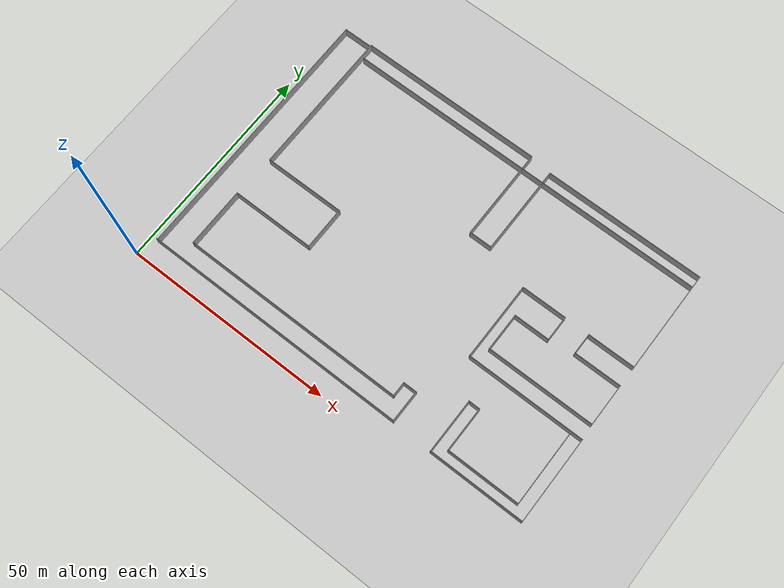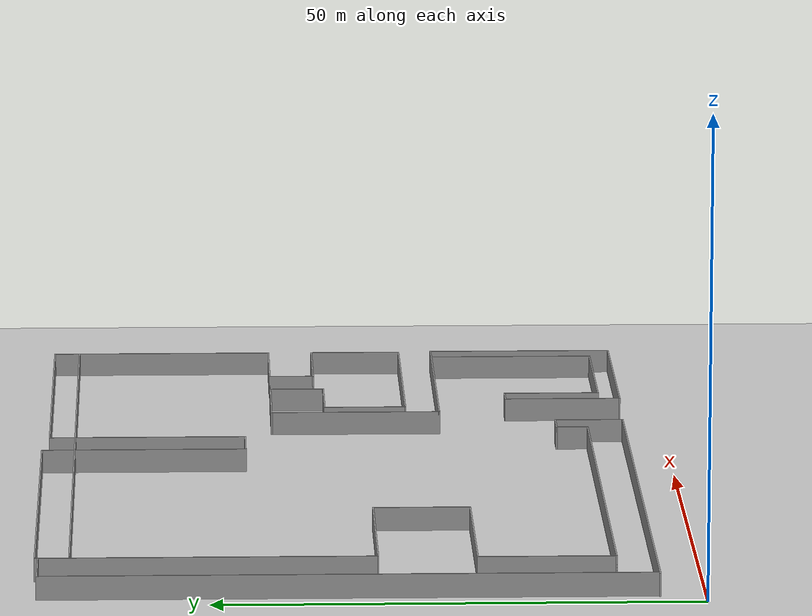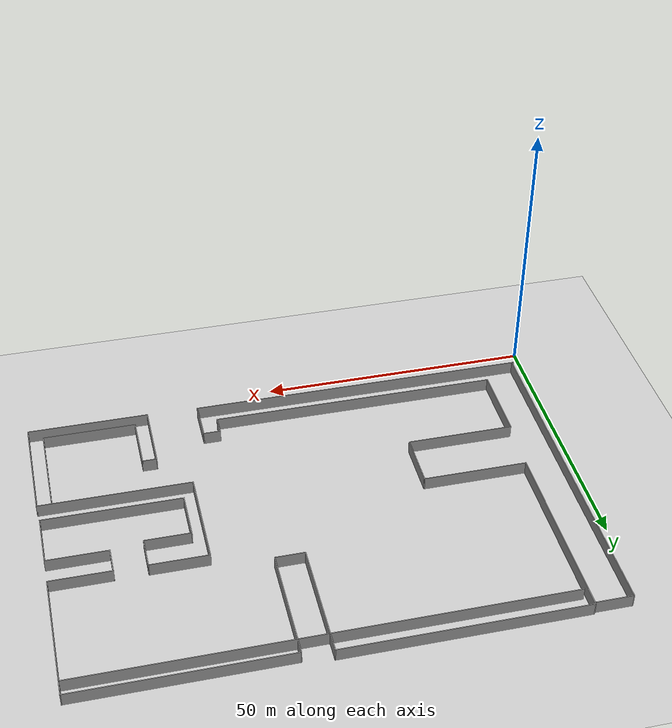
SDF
<sdf version="1.6">
 <world name="default">
  <light name="sun" type="directional">
   <pose>0 0 10 0 -0 0</pose>
   <diffuse>0.8 0.8 0.8 1</diffuse>
   <specular>0.2 0.2 0.2 1</specular>
   <attenuation>
    <range>1000</range>
    <constant>0.9</constant>
    <linear>0.01</linear>
    <quadratic>0.001</quadratic>
   </attenuation>
   <direction>-0.5 0.1 -0.9</direction>
  </light>
  <model name="ground_plane">
   <static>1</static>
   <link name="link">
    <collision name="collision">
     <geometry><plane><normal>0 0 1</normal><size>100 100</size></plane></geometry>
     <surface><friction><ode><mu>100</mu><mu2>50</mu2></ode></friction></surface>
    </collision>
    <visual name="visual">
     <cast_shadows>0</cast_shadows>
     <geometry><plane><normal>0 0 1</normal><size>100 100</size></plane></geometry>
     <material>
      <script><uri>file://media/materials/scripts/gazebo.material</uri><name>Gazebo/Grey</name></script>
     </material>
    </visual>
   </link>
  </model>
  <gravity>0 0 -9.8</gravity>
  <magnetic_field>6e-06 2.3e-05 -4.2e-05</magnetic_field>
  <atmosphere type="adiabatic"/>
  <physics name="default_physics" default="0" type="ode">
   <max_step_size>0.001</max_step_size>
   <real_time_factor>1</real_time_factor>
   <real_time_update_rate>1000</real_time_update_rate>
  </physics>
  <scene><ambient>0.4 0.4 0.4 1</ambient><background>0.7 0.7 0.7 1</background><shadows>1</shadows></scene>
  <spherical_coordinates>
   <surface_model>EARTH_WGS84</surface_model>
   <latitude_deg>0</latitude_deg>
   <longitude_deg>0</longitude_deg>
   <elevation>0</elevation>
   <heading_deg>0</heading_deg>
  </spherical_coordinates>
  <model name="multivehicle_course">
   <pose>49.3864 36.057 0 0 -0 0</pose>
   <link name="Wall_56">
    <collision name="Wall_56_Collision">
     <geometry><box><size>63 0.15 2.5</size></box></geometry>
     <pose>0 0 1.25 0 -0 0</pose>
    </collision>
    <visual name="Wall_56_Visual">
     <pose>0 0 1.25 0 -0 0</pose>
     <geometry><box><size>63 0.15 2.5</size></box></geometry>
     <material>
      <script><uri>file://media/materials/scripts/gazebo.material</uri><name>Gazebo/Grey</name></script>
      <ambient>1 1 1 1</ambient>
     </material>
     <meta><layer>0</layer></meta>
    </visual>
    <pose>-15.925 -31.4 0 0 -0 0</pose>
   </link>
   <link name="Wall_57">
    <collision name="Wall_57_Collision">
     <geometry><box><size>7.5 0.15 2.5</size></box></geometry>
     <pose>0 0 1.25 0 -0 0</pose>
    </collision>
    <visual name="Wall_57_Visual">
     <pose>0 0 1.25 0 -0 0</pose>
     <geometry><box><size>7.5 0.15 2.5</size></box></geometry>
     <material>
      <script><uri>file://media/materials/scripts/gazebo.material</uri><name>Gazebo/Grey</name></script>
      <ambient>1 1 1 1</ambient>
     </material>
     <meta><layer>0</layer></meta>
    </visual>
    <pose>15.5 -27.725 0 0 -0 1.5708</pose>
   </link>
   <link name="Wall_58">
    <collision name="Wall_58_Collision">
     <geometry><box><size>3.25 0.15 2.5</size></box></geometry>
     <pose>0 0 1.25 0 -0 0</pose>
    </collision>
    <visual name="Wall_58_Visual">
     <pose>0 0 1.25 0 -0 0</pose>
     <geometry><box><size>3.25 0.15 2.5</size></box></geometry>
     <material>
      <script><uri>file://media/materials/scripts/gazebo.material</uri><name>Gazebo/Grey</name></script>
      <ambient>1 1 1 1</ambient>
     </material>
     <meta><layer>0</layer></meta>
    </visual>
    <pose>13.95 -24.05 0 0 -0 3.14159</pose>
   </link>
   <link name="Wall_59">
    <collision name="Wall_59_Collision">
     <geometry><box><size>3.5 0.15 2.5</size></box></geometry>
     <pose>0 0 1.25 0 -0 0</pose>
    </collision>
    <visual name="Wall_59_Visual">
     <pose>0 0 1.25 0 -0 0</pose>
     <geometry><box><size>3.5 0.15 2.5</size></box></geometry>
     <material>
      <script><uri>file://media/materials/scripts/gazebo.material</uri><name>Gazebo/Grey</name></script>
      <ambient>1 1 1 1</ambient>
     </material>
     <meta><layer>0</layer></meta>
    </visual>
    <pose>12.4 -25.725 0 0 -0 -1.5708</pose>
   </link>
   <link name="Wall_60">
    <collision name="Wall_60_Collision">
     <geometry><box><size>53.25 0.15 2.5</size></box></geometry>
     <pose>0 0 1.25 0 -0 0</pose>
    </collision>
    <visual name="Wall_60_Visual">
     <pose>0 0 1.25 0 -0 0</pose>
     <geometry><box><size>53.25 0.15 2.5</size></box></geometry>
     <material>
      <script><uri>file://media/materials/scripts/gazebo.material</uri><name>Gazebo/Grey</name></script>
      <ambient>1 1 1 1</ambient>
     </material>
     <meta><layer>0</layer></meta>
    </visual>
    <pose>-14.15 -27.4 0 0 -0 3.14159</pose>
   </link>
   <link name="Wall_61">
    <collision name="Wall_61_Collision">
     <geometry><box><size>14.25 0.15 2.5</size></box></geometry>
     <pose>0 0 1.25 0 -0 0</pose>
    </collision>
    <visual name="Wall_61_Visual">
     <pose>0 0 1.25 0 -0 0</pose>
     <geometry><box><size>14.25 0.15 2.5</size></box></geometry>
     <material>
      <script><uri>file://media/materials/scripts/gazebo.material</uri><name>Gazebo/Grey</name></script>
      <ambient>1 1 1 1</ambient>
     </material>
     <meta><layer>0</layer></meta>
    </visual>
    <pose>-40.7 -20.35 0 0 -0 1.5708</pose>
   </link>
   <link name="Wall_62">
    <collision name="Wall_62_Collision">
     <geometry><box><size>19.75 0.15 2.5</size></box></geometry>
     <pose>0 0 1.25 0 -0 0</pose>
    </collision>
    <visual name="Wall_62_Visual">
     <pose>0 0 1.25 0 -0 0</pose>
     <geometry><box><size>19.75 0.15 2.5</size></box></geometry>
     <material>
      <script><uri>file://media/materials/scripts/gazebo.material</uri><name>Gazebo/Grey</name></script>
      <ambient>1 1 1 1</ambient>
     </material>
     <meta><layer>0</layer></meta>
    </visual>
    <pose>-30.9 -13.3 0 0 -0 0</pose>
   </link>
   <link name="Wall_63">
    <collision name="Wall_63_Collision">
     <geometry><box><size>10.25 0.15 2.5</size></box></geometry>
     <pose>0 0 1.25 0 -0 0</pose>
    </collision>
    <visual name="Wall_63_Visual">
     <pose>0 0 1.25 0 -0 0</pose>
     <geometry><box><size>10.25 0.15 2.5</size></box></geometry>
     <material>
      <script><uri>file://media/materials/scripts/gazebo.material</uri><name>Gazebo/Grey</name></script>
      <ambient>1 1 1 1</ambient>
     </material>
     <meta><layer>0</layer></meta>
    </visual>
    <pose>-21.1 -8.25 0 0 -0 1.5708</pose>
   </link>
   <link name="Wall_64">
    <collision name="Wall_64_Collision">
     <geometry><box><size>19.25 0.15 2.5</size></box></geometry>
     <pose>0 0 1.25 0 -0 0</pose>
    </collision>
    <visual name="Wall_64_Visual">
     <pose>0 0 1.25 0 -0 0</pose>
     <geometry><box><size>19.25 0.15 2.5</size></box></geometry>
     <material>
      <script><uri>file://media/materials/scripts/gazebo.material</uri><name>Gazebo/Grey</name></script>
      <ambient>1 1 1 1</ambient>
     </material>
     <meta><layer>0</layer></meta>
    </visual>
    <pose>-30.65 -3.2 0 0 -0 3.14159</pose>
   </link>
   <link name="Wall_65">
    <collision name="Wall_65_Collision">
     <geometry><box><size>35 0.15 2.5</size></box></geometry>
     <pose>0 0 1.25 0 -0 0</pose>
    </collision>
    <visual name="Wall_65_Visual">
     <pose>0 0 1.25 0 -0 0</pose>
     <geometry><box><size>35 0.15 2.5</size></box></geometry>
     <material>
      <script><uri>file://media/materials/scripts/gazebo.material</uri><name>Gazebo/Grey</name></script>
      <ambient>1 1 1 1</ambient>
     </material>
     <meta><layer>0</layer></meta>
    </visual>
    <pose>-40.2 14.225 0 0 -0 1.5708</pose>
   </link>
   <link name="Wall_66">
    <collision name="Wall_66_Collision">
     <geometry><box><size>44 0.15 2.5</size></box></geometry>
     <pose>0 0 1.25 0 -0 0</pose>
    </collision>
    <visual name="Wall_66_Visual">
     <pose>0 0 1.25 0 -0 0</pose>
     <geometry><box><size>44 0.15 2.5</size></box></geometry>
     <material>
      <script><uri>file://media/materials/scripts/gazebo.material</uri><name>Gazebo/Grey</name></script>
      <ambient>1 1 1 1</ambient>
     </material>
     <meta><layer>0</layer></meta>
    </visual>
    <pose>-18.275 31.65 0 0 -0 0</pose>
   </link>
   <link name="Wall_67">
    <collision name="Wall_67_Collision">
     <geometry><box><size>22 0.15 2.5</size></box></geometry>
     <pose>0 0 1.25 0 -0 0</pose>
    </collision>
    <visual name="Wall_67_Visual">
     <pose>0 0 1.25 0 -0 0</pose>
     <geometry><box><size>22 0.15 2.5</size></box></geometry>
     <material>
      <script><uri>file://media/materials/scripts/gazebo.material</uri><name>Gazebo/Grey</name></script>
      <ambient>1 1 1 1</ambient>
     </material>
     <meta><layer>0</layer></meta>
    </visual>
    <pose>3.65 20.725 0 0 -0 -1.5708</pose>
   </link>
   <link name="Wall_68">
    <collision name="Wall_68_Collision">
     <geometry><box><size>5.5 0.15 2.5</size></box></geometry>
     <pose>0 0 1.25 0 -0 0</pose>
    </collision>
    <visual name="Wall_68_Visual">
     <pose>0 0 1.25 0 -0 0</pose>
     <geometry><box><size>5.5 0.15 2.5</size></box></geometry>
     <material>
      <script><uri>file://media/materials/scripts/gazebo.material</uri><name>Gazebo/Grey</name></script>
      <ambient>1 1 1 1</ambient>
     </material>
     <meta><layer>0</layer></meta>
    </visual>
    <pose>6.325 9.8 0 0 -0 0</pose>
   </link>
   <link name="Wall_69">
    <collision name="Wall_69_Collision">
     <geometry><box><size>21.25 0.15 2.5</size></box></geometry>
     <pose>0 0 1.25 0 -0 0</pose>
    </collision>
    <visual name="Wall_69_Visual">
     <pose>0 0 1.25 0 -0 0</pose>
     <geometry><box><size>21.25 0.15 2.5</size></box></geometry>
     <material>
      <script><uri>file://media/materials/scripts/gazebo.material</uri><name>Gazebo/Grey</name></script>
      <ambient>1 1 1 1</ambient>
     </material>
     <meta><layer>0</layer></meta>
    </visual>
    <pose>9 20.35 0 0 -0 1.5708</pose>
   </link>
   <link name="Wall_70">
    <collision name="Wall_70_Collision">
     <geometry><box><size>38.25 0.15 2.5</size></box></geometry>
     <pose>0 0 1.25 0 -0 0</pose>
    </collision>
    <visual name="Wall_70_Visual">
     <pose>0 0 1.25 0 -0 0</pose>
     <geometry><box><size>38.25 0.15 2.5</size></box></geometry>
     <material>
      <script><uri>file://media/materials/scripts/gazebo.material</uri><name>Gazebo/Grey</name></script>
      <ambient>1 1 1 1</ambient>
     </material>
     <meta><layer>0</layer></meta>
    </visual>
    <pose>28.05 30.9 0 0 -0 0</pose>
   </link>
   <link name="Wall_71">
    <collision name="Wall_71_Collision">
     <geometry><box><size>24.25 0.15 2.5</size></box></geometry>
     <pose>0 0 1.25 0 -0 0</pose>
    </collision>
    <visual name="Wall_71_Visual">
     <pose>0 0 1.25 0 -0 0</pose>
     <geometry><box><size>24.25 0.15 2.5</size></box></geometry>
     <material>
      <script><uri>file://media/materials/scripts/gazebo.material</uri><name>Gazebo/Grey</name></script>
      <ambient>1 1 1 1</ambient>
     </material>
     <meta><layer>0</layer></meta>
    </visual>
    <pose>47.1 18.85 0 0 -0 -1.5708</pose>
   </link>
   <link name="Wall_72">
    <collision name="Wall_72_Collision">
     <geometry><box><size>11.25 0.15 2.5</size></box></geometry>
     <pose>0 0 1.25 0 -0 0</pose>
    </collision>
    <visual name="Wall_72_Visual">
     <pose>0 0 1.25 0 -0 0</pose>
     <geometry><box><size>11.25 0.15 2.5</size></box></geometry>
     <material>
      <script><uri>file://media/materials/scripts/gazebo.material</uri><name>Gazebo/Grey</name></script>
      <ambient>1 1 1 1</ambient>
     </material>
     <meta><layer>0</layer></meta>
    </visual>
    <pose>41.55 6.8 0 0 -0 3.14159</pose>
   </link>
   <link name="Wall_73">
    <collision name="Wall_73_Collision">
     <geometry><box><size>5 0.15 2.5</size></box></geometry>
     <pose>0 0 1.25 0 -0 0</pose>
    </collision>
    <visual name="Wall_73_Visual">
     <pose>0 0 1.25 0 -0 0</pose>
     <geometry><box><size>5 0.15 2.5</size></box></geometry>
     <material>
      <script><uri>file://media/materials/scripts/gazebo.material</uri><name>Gazebo/Grey</name></script>
      <ambient>1 1 1 1</ambient>
     </material>
     <meta><layer>0</layer></meta>
    </visual>
    <pose>36 4.375 0 0 -0 -1.5708</pose>
   </link>
   <link name="Wall_74">
    <collision name="Wall_74_Collision">
     <geometry><box><size>11.25 0.15 2.5</size></box></geometry>
     <pose>0 0 1.25 0 -0 0</pose>
    </collision>
    <visual name="Wall_74_Visual">
     <pose>0 0 1.25 0 -0 0</pose>
     <geometry><box><size>11.25 0.15 2.5</size></box></geometry>
     <material>
      <script><uri>file://media/materials/scripts/gazebo.material</uri><name>Gazebo/Grey</name></script>
      <ambient>1 1 1 1</ambient>
     </material>
     <meta><layer>0</layer></meta>
    </visual>
    <pose>41.55 1.95 0 0 -0 0</pose>
   </link>
   <link name="Wall_75">
    <collision name="Wall_75_Collision">
     <geometry><box><size>10 0.15 2.5</size></box></geometry>
     <pose>0 0 1.25 0 -0 0</pose>
    </collision>
    <visual name="Wall_75_Visual">
     <pose>0 0 1.25 0 -0 0</pose>
     <geometry><box><size>10 0.15 2.5</size></box></geometry>
     <material>
      <script><uri>file://media/materials/scripts/gazebo.material</uri><name>Gazebo/Grey</name></script>
      <ambient>1 1 1 1</ambient>
     </material>
     <meta><layer>0</layer></meta>
    </visual>
    <pose>47.1 -2.975 0 0 -0 -1.5708</pose>
   </link>
   <link name="Wall_76">
    <collision name="Wall_76_Collision">
     <geometry><box><size>25.5 0.15 2.5</size></box></geometry>
     <pose>0 0 1.25 0 -0 0</pose>
    </collision>
    <visual name="Wall_76_Visual">
     <pose>0 0 1.25 0 -0 0</pose>
     <geometry><box><size>25.5 0.15 2.5</size></box></geometry>
     <material>
      <script><uri>file://media/materials/scripts/gazebo.material</uri><name>Gazebo/Grey</name></script>
      <ambient>1 1 1 1</ambient>
     </material>
     <meta><layer>0</layer></meta>
    </visual>
    <pose>34.425 -7.9 0 0 -0 3.14159</pose>
   </link>
   <link name="Wall_77">
    <collision name="Wall_77_Collision">
     <geometry><box><size>9 0.15 2.5</size></box></geometry>
     <pose>0 0 1.25 0 -0 0</pose>
    </collision>
    <visual name="Wall_77_Visual">
     <pose>0 0 1.25 0 -0 0</pose>
     <geometry><box><size>9 0.15 2.5</size></box></geometry>
     <material>
      <script><uri>file://media/materials/scripts/gazebo.material</uri><name>Gazebo/Grey</name></script>
      <ambient>1 1 1 1</ambient>
     </material>
     <meta><layer>0</layer></meta>
    </visual>
    <pose>21.75 -3.475 0 0 -0 1.5708</pose>
   </link>
   <link name="Wall_78">
    <collision name="Wall_78_Collision">
     <geometry><box><size>8.5 0.15 2.5</size></box></geometry>
     <pose>0 0 1.25 0 -0 0</pose>
    </collision>
    <visual name="Wall_78_Visual">
     <pose>0 0 1.25 0 -0 0</pose>
     <geometry><box><size>8.5 0.15 2.5</size></box></geometry>
     <material>
      <script><uri>file://media/materials/scripts/gazebo.material</uri><name>Gazebo/Grey</name></script>
      <ambient>1 1 1 1</ambient>
     </material>
     <meta><layer>0</layer></meta>
    </visual>
    <pose>25.925 0.950001 0 0 -0 0</pose>
   </link>
   <link name="Wall_79">
    <collision name="Wall_79_Collision">
     <geometry><box><size>6 0.15 2.5</size></box></geometry>
     <pose>0 0 1.25 0 -0 0</pose>
    </collision>
    <visual name="Wall_79_Visual">
     <pose>0 0 1.25 0 -0 0</pose>
     <geometry><box><size>6 0.15 2.5</size></box></geometry>
     <material>
      <script><uri>file://media/materials/scripts/gazebo.material</uri><name>Gazebo/Grey</name></script>
      <ambient>1 1 1 1</ambient>
     </material>
     <meta><layer>0</layer></meta>
    </visual>
    <pose>30.1 3.875 0 0 -0 1.5708</pose>
   </link>
   <link name="Wall_80">
    <collision name="Wall_80_Collision">
     <geometry><box><size>10.75 0.15 2.5</size></box></geometry>
     <pose>0 0 1.25 0 -0 0</pose>
    </collision>
    <visual name="Wall_80_Visual">
     <pose>0 0 1.25 0 -0 0</pose>
     <geometry><box><size>10.75 0.15 2.5</size></box></geometry>
     <material>
      <script><uri>file://media/materials/scripts/gazebo.material</uri><name>Gazebo/Grey</name></script>
      <ambient>1 1 1 1</ambient>
     </material>
     <meta><layer>0</layer></meta>
    </visual>
    <pose>24.8 6.8 0 0 -0 3.14159</pose>
   </link>
   <link name="Wall_81">
    <collision name="Wall_81_Collision">
     <geometry><box><size>18.5 0.15 2.5</size></box></geometry>
     <pose>0 0 1.25 0 -0 0</pose>
    </collision>
    <visual name="Wall_81_Visual">
     <pose>0 0 1.25 0 -0 0</pose>
     <geometry><box><size>18.5 0.15 2.5</size></box></geometry>
     <material>
      <script><uri>file://media/materials/scripts/gazebo.material</uri><name>Gazebo/Grey</name></script>
      <ambient>1 1 1 1</ambient>
     </material>
     <meta><layer>0</layer></meta>
    </visual>
    <pose>19.5 -2.375 0 0 -0 -1.5708</pose>
   </link>
   <link name="Wall_82">
    <collision name="Wall_82_Collision">
     <geometry><box><size>28 0.15 2.5</size></box></geometry>
     <pose>0 0 1.25 0 -0 0</pose>
    </collision>
    <visual name="Wall_82_Visual">
     <pose>0 0 1.25 0 -0 0</pose>
     <geometry><box><size>28 0.15 2.5</size></box></geometry>
     <material>
      <script><uri>file://media/materials/scripts/gazebo.material</uri><name>Gazebo/Grey</name></script>
      <ambient>1 1 1 1</ambient>
     </material>
     <meta><layer>0</layer></meta>
    </visual>
    <pose>33.425 -11.55 0 0 -0 0</pose>
   </link>
   <link name="Wall_83">
    <collision name="Wall_83_Collision">
     <geometry><box><size>20.25 0.15 2.5</size></box></geometry>
     <pose>0 0 1.25 0 -0 0</pose>
    </collision>
    <visual name="Wall_83_Visual">
     <pose>0 0 1.25 0 -0 0</pose>
     <geometry><box><size>20.25 0.15 2.5</size></box></geometry>
     <material>
      <script><uri>file://media/materials/scripts/gazebo.material</uri><name>Gazebo/Grey</name></script>
      <ambient>1 1 1 1</ambient>
     </material>
     <meta><layer>0</layer></meta>
    </visual>
    <pose>47.35 -21.6 0 0 -0 -1.5708</pose>
   </link>
   <link name="Wall_84">
    <collision name="Wall_84_Collision">
     <geometry><box><size>22.5 0.15 2.5</size></box></geometry>
     <pose>0 0 1.25 0 -0 0</pose>
    </collision>
    <visual name="Wall_84_Visual">
     <pose>0 0 1.25 0 -0 0</pose>
     <geometry><box><size>22.5 0.15 2.5</size></box></geometry>
     <material>
      <script><uri>file://media/materials/scripts/gazebo.material</uri><name>Gazebo/Grey</name></script>
      <ambient>1 1 1 1</ambient>
     </material>
     <meta><layer>0</layer></meta>
    </visual>
    <pose>36.175 -31.65 0 0 -0 3.14159</pose>
   </link>
   <link name="Wall_85">
    <collision name="Wall_85_Collision">
     <geometry><box><size>12.75 0.15 2.5</size></box></geometry>
     <pose>0 0 1.25 0 -0 0</pose>
    </collision>
    <visual name="Wall_85_Visual">
     <pose>0 0 1.25 0 -0 0</pose>
     <geometry><box><size>12.75 0.15 2.5</size></box></geometry>
     <material>
      <script><uri>file://media/materials/scripts/gazebo.material</uri><name>Gazebo/Grey</name></script>
      <ambient>1 1 1 1</ambient>
     </material>
     <meta><layer>0</layer></meta>
    </visual>
    <pose>25 -25.35 0 0 -0 1.5708</pose>
   </link>
   <link name="Wall_86">
    <collision name="Wall_86_Collision">
     <geometry><box><size>2.75 0.15 2.5</size></box></geometry>
     <pose>0 0 1.25 0 -0 0</pose>
    </collision>
    <visual name="Wall_86_Visual">
     <pose>0 0 1.25 0 -0 0</pose>
     <geometry><box><size>2.75 0.15 2.5</size></box></geometry>
     <material>
      <script><uri>file://media/materials/scripts/gazebo.material</uri><name>Gazebo/Grey</name></script>
      <ambient>1 1 1 1</ambient>
     </material>
     <meta><layer>0</layer></meta>
    </visual>
    <pose>26.3 -19.05 0 0 -0 0</pose>
   </link>
   <link name="Wall_87">
    <collision name="Wall_87_Collision">
     <geometry><box><size>10.5 0.15 2.5</size></box></geometry>
     <pose>0 0 1.25 0 -0 0</pose>
    </collision>
    <visual name="Wall_87_Visual">
     <pose>0 0 1.25 0 -0 0</pose>
     <geometry><box><size>10.5 0.15 2.5</size></box></geometry>
     <material>
      <script><uri>file://media/materials/scripts/gazebo.material</uri><name>Gazebo/Grey</name></script>
      <ambient>1 1 1 1</ambient>
     </material>
     <meta><layer>0</layer></meta>
    </visual>
    <pose>27.6 -24.225 0 0 -0 -1.5708</pose>
   </link>
   <link name="Wall_88">
    <collision name="Wall_88_Collision">
     <geometry><box><size>17.25 0.15 2.5</size></box></geometry>
     <pose>0 0 1.25 0 -0 0</pose>
    </collision>
    <visual name="Wall_88_Visual">
     <pose>0 0 1.25 0 -0 0</pose>
     <geometry><box><size>17.25 0.15 2.5</size></box></geometry>
     <material>
      <script><uri>file://media/materials/scripts/gazebo.material</uri><name>Gazebo/Grey</name></script>
      <ambient>1 1 1 1</ambient>
     </material>
     <meta><layer>0</layer></meta>
    </visual>
    <pose>36.15 -29.4 0 0 -0 0</pose>
   </link>
   <link name="Wall_89">
    <collision name="Wall_89_Collision">
     <geometry><box><size>18 0.15 2.5</size></box></geometry>
     <pose>0 0 1.25 0 -0 0</pose>
    </collision>
    <visual name="Wall_89_Visual">
     <pose>0 0 1.25 0 -0 0</pose>
     <geometry><box><size>18 0.15 2.5</size></box></geometry>
     <material>
      <script><uri>file://media/materials/scripts/gazebo.material</uri><name>Gazebo/Grey</name></script>
      <ambient>1 1 1 1</ambient>
     </material>
     <meta><layer>0</layer></meta>
    </visual>
    <pose>44.7 -20.475 0 0 -0 1.5708</pose>
   </link>
   <link name="Wall_91">
    <collision name="Wall_91_Collision">
     <geometry><box><size>62.75 0.15 2.5</size></box></geometry>
     <pose>0 0 1.25 0 -0 0</pose>
    </collision>
    <visual name="Wall_91_Visual">
     <pose>0 0 1.25 0 -0 0</pose>
     <geometry><box><size>62.75 0.15 2.5</size></box></geometry>
     <material>
      <script><uri>file://media/materials/scripts/gazebo.material</uri><name>Gazebo/Grey</name></script>
      <ambient>1 1 1 1</ambient>
     </material>
     <meta><layer>0</layer></meta>
    </visual>
    <pose>-47.0494 0.03405 0 0 -0 1.5708</pose>
   </link>
   <link name="Wall_92">
    <collision name="Wall_92_Collision">
     <geometry><box><size>6.75 0.15 2.5</size></box></geometry>
     <pose>0 0 1.25 0 -0 0</pose>
    </collision>
    <visual name="Wall_92_Visual">
     <pose>0 0 1.25 0 -0 0</pose>
     <geometry><box><size>6.75 0.15 2.5</size></box></geometry>
     <material>
      <script><uri>file://media/materials/scripts/gazebo.material</uri><name>Gazebo/Grey</name></script>
      <ambient>1 1 1 1</ambient>
     </material>
     <meta><layer>0</layer></meta>
    </visual>
    <pose>-43.7494 31.334 0 0 -0 0</pose>
   </link>
   <link name="Wall_94">
    <collision name="Wall_94_Collision">
     <geometry><box><size>86.75 0.15 2.5</size></box></geometry>
     <pose>0 0 1.25 0 -0 0</pose>
    </collision>
    <visual name="Wall_94_Visual">
     <pose>0 0 1.25 0 -0 0</pose>
     <geometry><box><size>86.75 0.15 2.5</size></box></geometry>
     <material>
      <script><uri>file://media/materials/scripts/gazebo.material</uri><name>Gazebo/Grey</name></script>
      <ambient>1 1 1 1</ambient>
     </material>
     <meta><layer>0</layer></meta>
    </visual>
    <pose>3.77924 28.1446 0 0 -0 0</pose>
   </link>
   <static>1</static>
  </model>
 </world>
</sdf>
